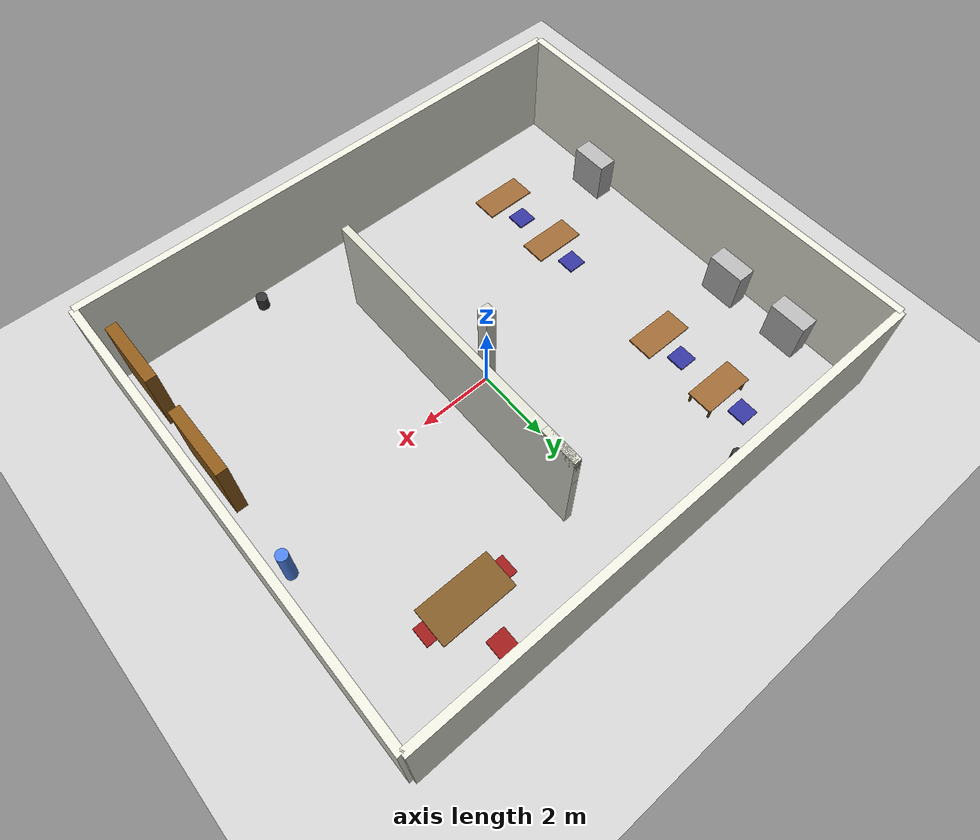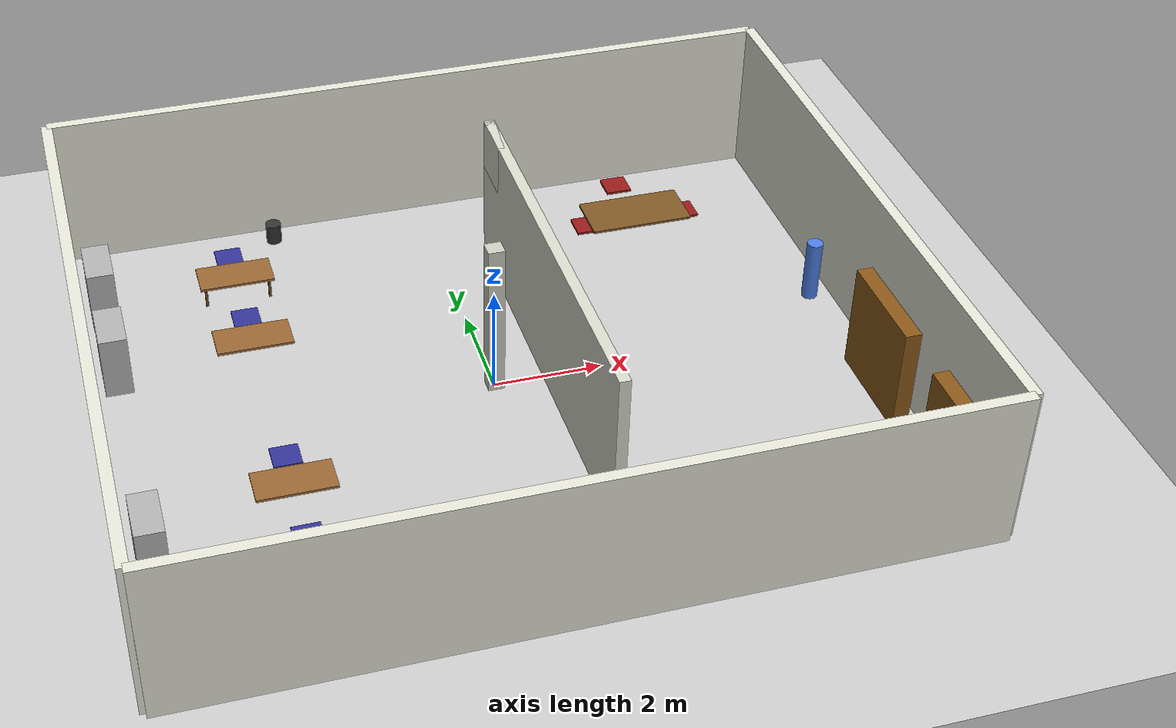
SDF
<?xml version="1.0" ?>
<sdf version="1.6">
  <world name="office_world">
    <!-- Gazebo Harmonic world systems                        -->

    <!-- Physics -->
    <plugin
      filename="gz-sim-physics-system"
      name="gz::sim::systems::Physics">
    </plugin>

    <!-- User commands / entity creation -->
    <plugin
      filename="gz-sim-user-commands-system"
      name="gz::sim::systems::UserCommands">
    </plugin>

    <!-- Scene broadcaster -->
    <plugin
      filename="gz-sim-scene-broadcaster-system"
      name="gz::sim::systems::SceneBroadcaster">
    </plugin>

    <!-- Sensors -->
    <plugin
      filename="gz-sim-sensors-system"
      name="gz::sim::systems::Sensors">
      <render_engine>ogre2</render_engine>
    </plugin>

    <!-- ========== PHYSICS ========== -->
    <physics type="ode">
      <real_time_update_rate>1000.0</real_time_update_rate>
      <max_step_size>0.001</max_step_size>
      <real_time_factor>1</real_time_factor>
    </physics>

    <!-- ========== LIGHTING ========== -->
    <light name="sun" type="directional">
      <cast_shadows>true</cast_shadows>
      <pose>0 0 10 0 0 0</pose>
      <diffuse>0.9 0.9 0.9 1</diffuse>
      <specular>0.3 0.3 0.3 1</specular>
      <direction>-0.5 0.1 -0.9</direction>
    </light>

    <light name="ceiling_light_1" type="point">
      <pose>0 0 3.0 0 0 0</pose>
      <diffuse>0.8 0.8 0.8 1</diffuse>
      <specular>0.1 0.1 0.1 1</specular>
      <attenuation>
        <range>10</range>
        <constant>0.5</constant>
        <linear>0.01</linear>
        <quadratic>0.001</quadratic>
      </attenuation>
      <cast_shadows>false</cast_shadows>
    </light>

    <light name="ceiling_light_2" type="point">
      <pose>5 5 3.0 0 0 0</pose>
      <diffuse>0.8 0.8 0.8 1</diffuse>
      <specular>0.1 0.1 0.1 1</specular>
      <attenuation>
        <range>10</range>
        <constant>0.5</constant>
        <linear>0.01</linear>
        <quadratic>0.001</quadratic>
      </attenuation>
      <cast_shadows>false</cast_shadows>
    </light>

    <!-- ========== GROUND PLANE ========== -->
    <model name="ground_plane">
      <static>true</static>
      <link name="link">
        <collision name="collision">
          <geometry>
            <plane>
              <normal>0 0 1</normal>
              <size>50 50</size>
            </plane>
          </geometry>
          <surface>
            <friction>
              <ode>
                <mu>1.0</mu>
                <mu2>1.0</mu2>
              </ode>
            </friction>
          </surface>
        </collision>
        <visual name="visual">
          <geometry>
            <plane>
              <normal>0 0 1</normal>
              <size>50 50</size>
            </plane>
          </geometry>
          <material>
            <ambient>0.8 0.8 0.8 1</ambient>
            <diffuse>0.8 0.8 0.8 1</diffuse>
          </material>
        </visual>
      </link>
    </model>

    <!-- ========== OUTER WALLS ========== -->
    <!-- South Wall -->
    <model name="wall_south">
      <static>true</static>
      <pose>0 -6 1.5 0 0 0</pose>
      <link name="link">
        <collision name="collision">
          <geometry><box><size>14 0.2 3</size></box></geometry>
        </collision>
        <visual name="visual">
          <geometry><box><size>14 0.2 3</size></box></geometry>
          <material><ambient>0.9 0.9 0.85 1</ambient><diffuse>0.9 0.9 0.85 1</diffuse></material>
        </visual>
      </link>
    </model>

    <!-- North Wall -->
    <model name="wall_north">
      <static>true</static>
      <pose>0 6 1.5 0 0 0</pose>
      <link name="link">
        <collision name="collision">
          <geometry><box><size>14 0.2 3</size></box></geometry>
        </collision>
        <visual name="visual">
          <geometry><box><size>14 0.2 3</size></box></geometry>
          <material><ambient>0.9 0.9 0.85 1</ambient><diffuse>0.9 0.9 0.85 1</diffuse></material>
        </visual>
      </link>
    </model>

    <!-- West Wall -->
    <model name="wall_west">
      <static>true</static>
      <pose>-7 0 1.5 0 0 0</pose>
      <link name="link">
        <collision name="collision">
          <geometry><box><size>0.2 12 3</size></box></geometry>
        </collision>
        <visual name="visual">
          <geometry><box><size>0.2 12 3</size></box></geometry>
          <material><ambient>0.9 0.9 0.85 1</ambient><diffuse>0.9 0.9 0.85 1</diffuse></material>
        </visual>
      </link>
    </model>

    <!-- East Wall -->
    <model name="wall_east">
      <static>true</static>
      <pose>7 0 1.5 0 0 0</pose>
      <link name="link">
        <collision name="collision">
          <geometry><box><size>0.2 12 3</size></box></geometry>
        </collision>
        <visual name="visual">
          <geometry><box><size>0.2 12 3</size></box></geometry>
          <material><ambient>0.9 0.9 0.85 1</ambient><diffuse>0.9 0.9 0.85 1</diffuse></material>
        </visual>
      </link>
    </model>

    <!-- ========== INNER WALLS (ROOMS) ========== -->
    <!-- Room divider wall (horizontal) -->
    <model name="wall_divider_h">
      <static>true</static>
      <pose>1 0 1.5 0 0 0</pose>
      <link name="link">
        <collision name="collision">
          <geometry><box><size>0.2 8 3</size></box></geometry>
        </collision>
        <visual name="visual">
          <geometry><box><size>0.2 8 3</size></box></geometry>
          <material><ambient>0.85 0.85 0.8 1</ambient><diffuse>0.85 0.85 0.8 1</diffuse></material>
        </visual>
      </link>
    </model>

    <!-- Door gap wall top piece -->
    <model name="wall_divider_door_top">
      <static>true</static>
      <pose>1 3.5 2.5 0 0 0</pose>
      <link name="link">
        <collision name="collision">
          <geometry><box><size>0.2 1 1</size></box></geometry>
        </collision>
        <visual name="visual">
          <geometry><box><size>0.2 1 1</size></box></geometry>
          <material><ambient>0.85 0.85 0.8 1</ambient><diffuse>0.85 0.85 0.8 1</diffuse></material>
        </visual>
      </link>
    </model>

    <!-- ========== OFFICE DESKS ========== -->
    <!-- Desk 1 -->
    <model name="desk_1">
      <static>true</static>
      <pose>-4 4 0.4 0 0 0</pose>
      <link name="link">
        <collision name="collision">
          <geometry><box><size>1.4 0.7 0.05</size></box></geometry>
        </collision>
        <visual name="visual">
          <geometry><box><size>1.4 0.7 0.05</size></box></geometry>
          <material><ambient>0.6 0.4 0.2 1</ambient><diffuse>0.6 0.4 0.2 1</diffuse></material>
        </visual>
      </link>
    </model>

    <!-- Desk 1 Leg Front Left -->
    <model name="desk_1_leg_fl">
      <static>true</static>
      <pose>-4.6 4.3 0.2 0 0 0</pose>
      <link name="link">
        <collision name="collision">
          <geometry><box><size>0.05 0.05 0.4</size></box></geometry>
        </collision>
        <visual name="visual">
          <geometry><box><size>0.05 0.05 0.4</size></box></geometry>
          <material><ambient>0.4 0.3 0.1 1</ambient><diffuse>0.4 0.3 0.1 1</diffuse></material>
        </visual>
      </link>
    </model>

    <!-- Desk 1 Leg Front Right -->
    <model name="desk_1_leg_fr">
      <static>true</static>
      <pose>-3.4 4.3 0.2 0 0 0</pose>
      <link name="link">
        <collision name="collision">
          <geometry><box><size>0.05 0.05 0.4</size></box></geometry>
        </collision>
        <visual name="visual">
          <geometry><box><size>0.05 0.05 0.4</size></box></geometry>
          <material><ambient>0.4 0.3 0.1 1</ambient><diffuse>0.4 0.3 0.1 1</diffuse></material>
        </visual>
      </link>
    </model>

    <!-- Desk 1 Leg Back Left -->
    <model name="desk_1_leg_bl">
      <static>true</static>
      <pose>-4.6 3.7 0.2 0 0 0</pose>
      <link name="link">
        <collision name="collision">
          <geometry><box><size>0.05 0.05 0.4</size></box></geometry>
        </collision>
        <visual name="visual">
          <geometry><box><size>0.05 0.05 0.4</size></box></geometry>
          <material><ambient>0.4 0.3 0.1 1</ambient><diffuse>0.4 0.3 0.1 1</diffuse></material>
        </visual>
      </link>
    </model>

    <!-- Desk 1 Leg Back Right -->
    <model name="desk_1_leg_br">
      <static>true</static>
      <pose>-3.4 3.7 0.2 0 0 0</pose>
      <link name="link">
        <collision name="collision">
          <geometry><box><size>0.05 0.05 0.4</size></box></geometry>
        </collision>
        <visual name="visual">
          <geometry><box><size>0.05 0.05 0.4</size></box></geometry>
          <material><ambient>0.4 0.3 0.1 1</ambient><diffuse>0.4 0.3 0.1 1</diffuse></material>
        </visual>
      </link>
    </model>

    <!-- Desk 2 -->
    <model name="desk_2">
      <static>true</static>
      <pose>-4 2 0.4 0 0 0</pose>
      <link name="link">
        <collision name="collision">
          <geometry><box><size>1.4 0.7 0.05</size></box></geometry>
        </collision>
        <visual name="visual">
          <geometry><box><size>1.4 0.7 0.05</size></box></geometry>
          <material><ambient>0.6 0.4 0.2 1</ambient><diffuse>0.6 0.4 0.2 1</diffuse></material>
        </visual>
      </link>
    </model>

    <!-- Desk 3 - Meeting room -->
    <model name="desk_meeting">
      <static>true</static>
      <pose>4 4 0.4 0 0 0</pose>
      <link name="link">
        <collision name="collision">
          <geometry><box><size>2.0 1.0 0.05</size></box></geometry>
        </collision>
        <visual name="visual">
          <geometry><box><size>2.0 1.0 0.05</size></box></geometry>
          <material><ambient>0.5 0.35 0.15 1</ambient><diffuse>0.5 0.35 0.15 1</diffuse></material>
        </visual>
      </link>
    </model>

    <!-- Desk 4 -->
    <model name="desk_4">
      <static>true</static>
      <pose>-4 -2 0.4 0 0 0</pose>
      <link name="link">
        <collision name="collision">
          <geometry><box><size>1.4 0.7 0.05</size></box></geometry>
        </collision>
        <visual name="visual">
          <geometry><box><size>1.4 0.7 0.05</size></box></geometry>
          <material><ambient>0.6 0.4 0.2 1</ambient><diffuse>0.6 0.4 0.2 1</diffuse></material>
        </visual>
      </link>
    </model>

    <!-- Desk 5 -->
    <model name="desk_5">
      <static>true</static>
      <pose>-4 -4 0.4 0 0 0</pose>
      <link name="link">
        <collision name="collision">
          <geometry><box><size>1.4 0.7 0.05</size></box></geometry>
        </collision>
        <visual name="visual">
          <geometry><box><size>1.4 0.7 0.05</size></box></geometry>
          <material><ambient>0.6 0.4 0.2 1</ambient><diffuse>0.6 0.4 0.2 1</diffuse></material>
        </visual>
      </link>
    </model>

    <!-- ========== CHAIRS ========== -->
    <!-- Chair 1 -->
    <model name="chair_1">
      <static>true</static>
      <pose>-4 4.8 0.25 0 0 0</pose>
      <link name="link">
        <collision name="collision">
          <geometry><box><size>0.5 0.5 0.05</size></box></geometry>
        </collision>
        <visual name="visual">
          <geometry><box><size>0.5 0.5 0.05</size></box></geometry>
          <material><ambient>0.2 0.2 0.6 1</ambient><diffuse>0.2 0.2 0.6 1</diffuse></material>
        </visual>
      </link>
    </model>

    <!-- Chair 2 -->
    <model name="chair_2">
      <static>true</static>
      <pose>-4 2.8 0.25 0 0 0</pose>
      <link name="link">
        <collision name="collision">
          <geometry><box><size>0.5 0.5 0.05</size></box></geometry>
        </collision>
        <visual name="visual">
          <geometry><box><size>0.5 0.5 0.05</size></box></geometry>
          <material><ambient>0.2 0.2 0.6 1</ambient><diffuse>0.2 0.2 0.6 1</diffuse></material>
        </visual>
      </link>
    </model>

    <!-- Chair 3 -->
    <model name="chair_3">
      <static>true</static>
      <pose>-4 -1.2 0.25 0 0 0</pose>
      <link name="link">
        <collision name="collision">
          <geometry><box><size>0.5 0.5 0.05</size></box></geometry>
        </collision>
        <visual name="visual">
          <geometry><box><size>0.5 0.5 0.05</size></box></geometry>
          <material><ambient>0.2 0.2 0.6 1</ambient><diffuse>0.2 0.2 0.6 1</diffuse></material>
        </visual>
      </link>
    </model>

    <!-- Chair 4 -->
    <model name="chair_4">
      <static>true</static>
      <pose>-4 -3.2 0.25 0 0 0</pose>
      <link name="link">
        <collision name="collision">
          <geometry><box><size>0.5 0.5 0.05</size></box></geometry>
        </collision>
        <visual name="visual">
          <geometry><box><size>0.5 0.5 0.05</size></box></geometry>
          <material><ambient>0.2 0.2 0.6 1</ambient><diffuse>0.2 0.2 0.6 1</diffuse></material>
        </visual>
      </link>
    </model>

    <!-- Meeting room chairs -->
    <model name="chair_m1">
      <static>true</static>
      <pose>3 4 0.25 0 0 1.5708</pose>
      <link name="link">
        <collision name="collision">
          <geometry><box><size>0.5 0.5 0.05</size></box></geometry>
        </collision>
        <visual name="visual">
          <geometry><box><size>0.5 0.5 0.05</size></box></geometry>
          <material><ambient>0.6 0.1 0.1 1</ambient><diffuse>0.6 0.1 0.1 1</diffuse></material>
        </visual>
      </link>
    </model>

    <model name="chair_m2">
      <static>true</static>
      <pose>5 4 0.25 0 0 1.5708</pose>
      <link name="link">
        <collision name="collision">
          <geometry><box><size>0.5 0.5 0.05</size></box></geometry>
        </collision>
        <visual name="visual">
          <geometry><box><size>0.5 0.5 0.05</size></box></geometry>
          <material><ambient>0.6 0.1 0.1 1</ambient><diffuse>0.6 0.1 0.1 1</diffuse></material>
        </visual>
      </link>
    </model>

    <model name="chair_m3">
      <static>true</static>
      <pose>4 5.2 0.25 0 0 3.1416</pose>
      <link name="link">
        <collision name="collision">
          <geometry><box><size>0.5 0.5 0.05</size></box></geometry>
        </collision>
        <visual name="visual">
          <geometry><box><size>0.5 0.5 0.05</size></box></geometry>
          <material><ambient>0.6 0.1 0.1 1</ambient><diffuse>0.6 0.1 0.1 1</diffuse></material>
        </visual>
      </link>
    </model>

    <!-- ========== FILING CABINETS ========== -->
    <model name="cabinet_1">
      <static>true</static>
      <pose>-6.5 4 0.6 0 0 0</pose>
      <link name="link">
        <collision name="collision">
          <geometry><box><size>0.5 1.0 1.2</size></box></geometry>
        </collision>
        <visual name="visual">
          <geometry><box><size>0.5 1.0 1.2</size></box></geometry>
          <material><ambient>0.7 0.7 0.7 1</ambient><diffuse>0.7 0.7 0.7 1</diffuse></material>
        </visual>
      </link>
    </model>

    <model name="cabinet_2">
      <static>true</static>
      <pose>-6.5 2 0.6 0 0 0</pose>
      <link name="link">
        <collision name="collision">
          <geometry><box><size>0.5 1.0 1.2</size></box></geometry>
        </collision>
        <visual name="visual">
          <geometry><box><size>0.5 1.0 1.2</size></box></geometry>
          <material><ambient>0.7 0.7 0.7 1</ambient><diffuse>0.7 0.7 0.7 1</diffuse></material>
        </visual>
      </link>
    </model>

    <model name="cabinet_3">
      <static>true</static>
      <pose>-6.5 -3 0.6 0 0 0</pose>
      <link name="link">
        <collision name="collision">
          <geometry><box><size>0.5 1.0 1.2</size></box></geometry>
        </collision>
        <visual name="visual">
          <geometry><box><size>0.5 1.0 1.2</size></box></geometry>
          <material><ambient>0.7 0.7 0.7 1</ambient><diffuse>0.7 0.7 0.7 1</diffuse></material>
        </visual>
      </link>
    </model>

    <!-- ========== BOOKSHELF ========== -->
    <model name="bookshelf_1">
      <static>true</static>
      <pose>6.5 -2 1.0 0 0 0</pose>
      <link name="link">
        <collision name="collision">
          <geometry><box><size>0.3 2.0 2.0</size></box></geometry>
        </collision>
        <visual name="visual">
          <geometry><box><size>0.3 2.0 2.0</size></box></geometry>
          <material><ambient>0.55 0.35 0.1 1</ambient><diffuse>0.55 0.35 0.1 1</diffuse></material>
        </visual>
      </link>
    </model>

    <model name="bookshelf_2">
      <static>true</static>
      <pose>6.5 -5 1.0 0 0 0</pose>
      <link name="link">
        <collision name="collision">
          <geometry><box><size>0.3 2.0 2.0</size></box></geometry>
        </collision>
        <visual name="visual">
          <geometry><box><size>0.3 2.0 2.0</size></box></geometry>
          <material><ambient>0.55 0.35 0.1 1</ambient><diffuse>0.55 0.35 0.1 1</diffuse></material>
        </visual>
      </link>
    </model>

    <!-- ========== PILLARS ========== -->
    <model name="pillar_1">
      <static>true</static>
      <pose>0 0 1.5 0 0 0</pose>
      <link name="link">
        <collision name="collision">
          <geometry><box><size>0.3 0.3 3.0</size></box></geometry>
        </collision>
        <visual name="visual">
          <geometry><box><size>0.3 0.3 3.0</size></box></geometry>
          <material><ambient>0.8 0.8 0.75 1</ambient><diffuse>0.8 0.8 0.75 1</diffuse></material>
        </visual>
      </link>
    </model>

    <!-- ========== WATER COOLER ========== -->
    <model name="water_cooler">
      <static>true</static>
      <pose>6.5 1 0.6 0 0 0</pose>
      <link name="link">
        <collision name="collision">
          <geometry><cylinder><radius>0.15</radius><length>1.2</length></cylinder></geometry>
        </collision>
        <visual name="visual">
          <geometry><cylinder><radius>0.15</radius><length>1.2</length></cylinder></geometry>
          <material><ambient>0.3 0.5 0.9 1</ambient><diffuse>0.3 0.5 0.9 1</diffuse></material>
        </visual>
      </link>
    </model>

    <!-- ========== TRASH BINS ========== -->
    <model name="trash_bin_1">
      <static>true</static>
      <pose>-3 5.5 0.2 0 0 0</pose>
      <link name="link">
        <collision name="collision">
          <geometry><cylinder><radius>0.15</radius><length>0.4</length></cylinder></geometry>
        </collision>
        <visual name="visual">
          <geometry><cylinder><radius>0.15</radius><length>0.4</length></cylinder></geometry>
          <material><ambient>0.2 0.2 0.2 1</ambient><diffuse>0.2 0.2 0.2 1</diffuse></material>
        </visual>
      </link>
    </model>

    <model name="trash_bin_2">
      <static>true</static>
      <pose>3 -5.5 0.2 0 0 0</pose>
      <link name="link">
        <collision name="collision">
          <geometry><cylinder><radius>0.15</radius><length>0.4</length></cylinder></geometry>
        </collision>
        <visual name="visual">
          <geometry><cylinder><radius>0.15</radius><length>0.4</length></cylinder></geometry>
          <material><ambient>0.2 0.2 0.2 1</ambient><diffuse>0.2 0.2 0.2 1</diffuse></material>
        </visual>
      </link>
    </model>

    <!-- ========== SCENE SETTINGS ========== -->
    <scene>
      <ambient>0.4 0.4 0.4 1</ambient>
      <background>0.7 0.7 0.7 1</background>
      <shadows>true</shadows>
    </scene>

    <!-- ========== GUI CAMERA ========== -->
    <gui fullscreen="0">
      <camera name="user_camera">
        <pose>0 -15 12 0 0.6 1.5708</pose>
        <view_controller>orbit</view_controller>
      </camera>
    </gui>

  </world>
</sdf>
